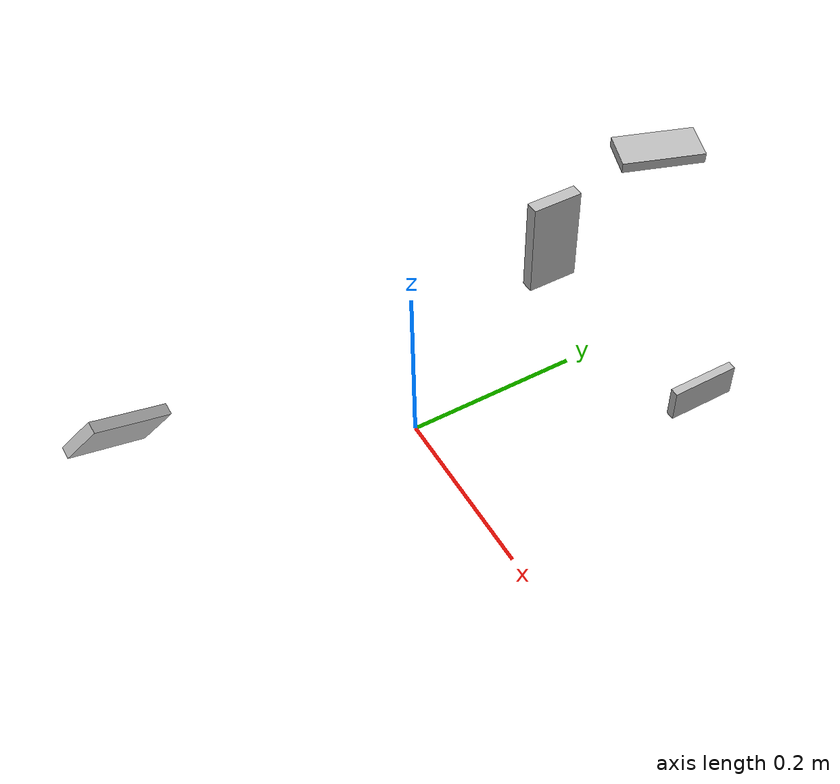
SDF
<?xml version="1.0" ?>
<sdf version="1.4">
  <world name="default">
    <include>
      <uri>model://sun</uri>
    </include>

    <model name="marker1">
      <pose>0.115 -0.328 0.322 -0.98 -0.44 -3.08</pose>
      <static>1</static>
      <link name="link">
        <visual name="visual">
          <geometry>
            <box>
              <size>0.01 0.04 0.08</size>
            </box>
          </geometry>
        </visual>
        <collision name='collision'>
          <laser_retro>0</laser_retro>
          <geometry>
            <box>
              <size>0.01 0.04 0.08</size>
            </box>
          </geometry>
        </collision>
      </link>
    </model>

    <model name="marker2">
      <pose>0.078 0.223 0.354 -1.91 -1.57 0</pose>
      <static>1</static>
      <link name="link">
        <visual name="visual">
          <geometry>
            <box>
              <size>0.01 0.04 0.08</size>
            </box>
          </geometry>
        </visual>
        <collision name='collision'>
          <laser_retro>0</laser_retro>
          <geometry>
            <box>
              <size>0.01 0.04 0.08</size>
            </box>
          </geometry>
        </collision>
      </link>
    </model>

    <model name="marker3">
      <pose>0.226 0 0.462 0 0 0</pose>
      <static>1</static>
      <link name="link">
        <visual name="visual">
          <geometry>
            <box>
              <size>0.01 0.04 0.08</size>
            </box>
          </geometry>
        </visual>
        <collision name='collision'>
          <laser_retro>0</laser_retro>
          <geometry>
            <box>
              <size>0.01 0.04 0.08</size>
            </box>
          </geometry>
        </collision>
      </link>
    </model>

    <model name="marker4">
      <pose>0.128 0.293 0.020 1.57 0 3.14</pose>
      <static>1</static>
      <link name="link">
        <visual name="visual">
          <geometry>
            <box>
              <size>0.01 0.04 0.08</size>
            </box>
          </geometry>
        </visual>
        <collision name='collision'>
          <laser_retro>0</laser_retro>
          <geometry>
            <box>
              <size>0.01 0.04 0.08</size>
            </box>
          </geometry>
        </collision>
      </link>
    </model>
  </world>
</sdf>
